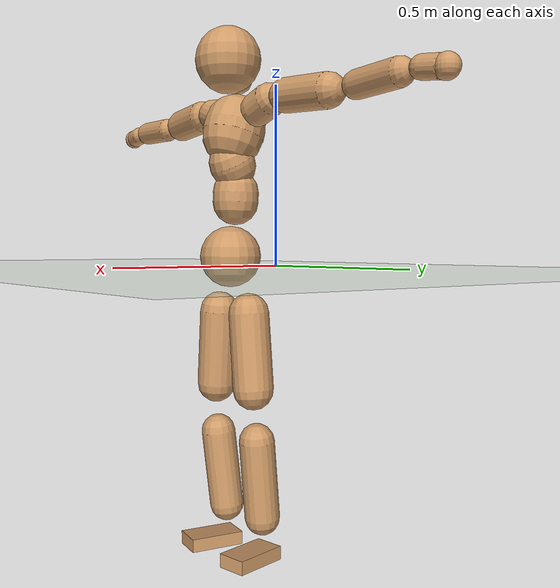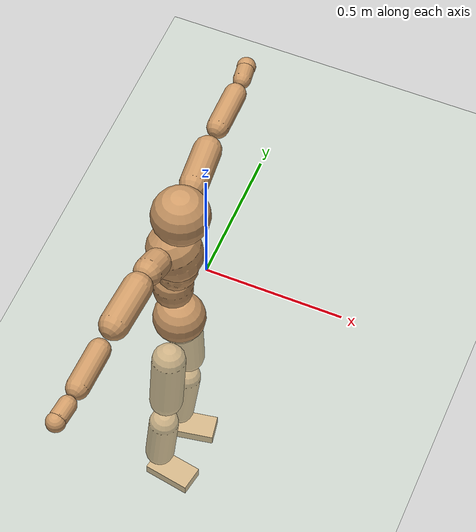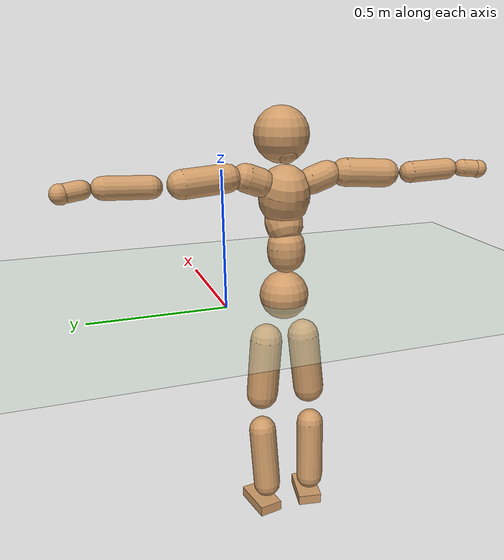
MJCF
<mujoco model="humanoid">
  <compiler coordinate="local"/>
  <default>
    <joint damping="0.0" armature="0.01" stiffness="0.0" limited="true"/>
    <geom conaffinity="1" condim="3" contype="7" margin="0.001" rgba="0.8 0.6 .4 1"/>
  </default>
  <asset>
    <texture type="skybox" builtin="gradient" rgb1=".4 .5 .6" rgb2="0 0 0" width="100" height="100"/>
    <texture builtin="flat" height="1278" mark="cross" markrgb="1 1 1" name="texgeom" random="0.01" rgb1="0.8 0.6 0.4" rgb2="0.8 0.6 0.4" type="cube" width="127"/>
    <texture builtin="checker" height="100" name="texplane" rgb1="0 0 0" rgb2="0.8 0.8 0.8" type="2d" width="100"/>
    <material name="MatPlane" reflectance="0.5" shininess="1" specular="1" texrepeat="60 60" texture="texplane"/>
    <material name="geom" texture="texgeom" texuniform="true"/>
  </asset>
  <worldbody>
    <light cutoff="100" diffuse="1 1 1" dir="-0 0 -1.3" directional="true" exponent="1" pos="0 0 1.3" specular=".1 .1 .1"/>
    <geom conaffinity="1" condim="3" name="floor" pos="0 0 0" rgba="0.8 0.9 0.8 1" size="100 100 .2" type="plane" material="MatPlane"/>
    <body name="Pelvis" pos="-0.002 -0.2261 0.0235">
      <freejoint name="Pelvis"/>
      <geom type="sphere" contype="1" conaffinity="1" density="500" size="0.0921" pos="0.0000 0.0000 0.0000" name="Pelvis"/>
      <body name="L_Hip" pos="-0.012 0.0701 -0.0931">
        <joint name="L_Hip_x" type="hinge" pos="0 0 0" axis="1 0 0" stiffness="800" damping="80" armature="0.02" range="-180.0000 180.0000"/>
        <joint name="L_Hip_y" type="hinge" pos="0 0 0" axis="0 1 0" stiffness="800" damping="80" armature="0.02" range="-180.0000 180.0000"/>
        <joint name="L_Hip_z" type="hinge" pos="0 0 0" axis="0 0 1" stiffness="800" damping="80" armature="0.02" range="-180.0000 180.0000"/>
        <geom type="capsule" contype="1" conaffinity="1" density="500" fromto="-0.0008 0.0067 -0.0756 -0.0031 0.0268 -0.3025" size="0.0607" name="L_Hip"/>
        <body name="L_Knee" pos="-0.0039 0.0335 -0.3781">
          <joint name="L_Knee_x" type="hinge" pos="0 0 0" axis="1 0 0" stiffness="800" damping="80" armature="0.02" range="-180.0000 180.0000"/>
          <joint name="L_Knee_y" type="hinge" pos="0 0 0" axis="0 1 0" stiffness="800" damping="80" armature="0.02" range="-180.0000 180.0000"/>
          <joint name="L_Knee_z" type="hinge" pos="0 0 0" axis="0 0 1" stiffness="800" damping="80" armature="0.02" range="-180.0000 180.0000"/>
          <geom type="capsule" contype="1" conaffinity="1" density="500" fromto="-0.0089 -0.0026 -0.0799 -0.0356 -0.0103 -0.3197" size="0.0533" name="L_Knee"/>
          <body name="L_Ankle" pos="-0.0446 -0.0128 -0.3996">
            <joint name="L_Ankle_x" type="hinge" pos="0 0 0" axis="1 0 0" stiffness="800" damping="80" armature="0.02" range="-180.0000 180.0000"/>
            <joint name="L_Ankle_y" type="hinge" pos="0 0 0" axis="0 1 0" stiffness="800" damping="80" armature="0.02" range="-180.0000 180.0000"/>
            <joint name="L_Ankle_z" type="hinge" pos="0 0 0" axis="0 0 1" stiffness="800" damping="80" armature="0.02" range="-180.0000 180.0000"/>
            <geom type="box" contype="1" conaffinity="1" density="500" pos="0.0591 0.0108 -0.0282" size="0.0838 0.0456 0.0206" quat="0.9959 0.0000 0.0000 0.0901" name="L_Ankle"/>
            <body name="L_Toe" pos="0.1182 0.0216 -0.0563">
              <joint name="L_Toe_x" type="hinge" pos="0 0 0" axis="1 0 0" stiffness="500" damping="50" armature="0.02" range="-180.0000 180.0000"/>
              <joint name="L_Toe_y" type="hinge" pos="0 0 0" axis="0 1 0" stiffness="500" damping="50" armature="0.02" range="-180.0000 180.0000"/>
              <joint name="L_Toe_z" type="hinge" pos="0 0 0" axis="0 0 1" stiffness="500" damping="50" armature="0.02" range="-180.0000 180.0000"/>
              <geom type="box" contype="1" conaffinity="1" density="500" pos="0.0000 0.0000 0.0277" size="0.001 0.0023 0.001" quat="0.9953 0.0000 0.0000 0.0966" name="L_Toe"/>
            </body>
          </body>
        </body>
      </body>
      <body name="R_Hip" pos="-0.0082 -0.0672 -0.0924">
        <joint name="R_Hip_x" type="hinge" pos="0 0 0" axis="1 0 0" stiffness="800" damping="80" armature="0.02" range="-180.0000 180.0000"/>
        <joint name="R_Hip_y" type="hinge" pos="0 0 0" axis="0 1 0" stiffness="800" damping="80" armature="0.02" range="-180.0000 180.0000"/>
        <joint name="R_Hip_z" type="hinge" pos="0 0 0" axis="0 0 1" stiffness="800" damping="80" armature="0.02" range="-180.0000 180.0000"/>
        <geom type="capsule" contype="1" conaffinity="1" density="500" fromto="-0.0014 -0.0079 -0.0771 -0.0057 -0.0316 -0.3083" size="0.0599" name="R_Hip"/>
        <body name="R_Knee" pos="-0.0071 -0.0396 -0.3854">
          <joint name="R_Knee_x" type="hinge" pos="0 0 0" axis="1 0 0" stiffness="800" damping="80" armature="0.02" range="-180.0000 180.0000"/>
          <joint name="R_Knee_y" type="hinge" pos="0 0 0" axis="0 1 0" stiffness="800" damping="80" armature="0.02" range="-180.0000 180.0000"/>
          <joint name="R_Knee_z" type="hinge" pos="0 0 0" axis="0 0 1" stiffness="800" damping="80" armature="0.02" range="-180.0000 180.0000"/>
          <geom type="capsule" contype="1" conaffinity="1" density="500" fromto="-0.0084 0.0031 -0.0797 -0.0337 0.0123 -0.3187" size="0.0535" name="R_Knee"/>
          <body name="R_Ankle" pos="-0.0422 0.0154 -0.3984">
            <joint name="R_Ankle_x" type="hinge" pos="0 0 0" axis="1 0 0" stiffness="800" damping="80" armature="0.02" range="-180.0000 180.0000"/>
            <joint name="R_Ankle_y" type="hinge" pos="0 0 0" axis="0 1 0" stiffness="800" damping="80" armature="0.02" range="-180.0000 180.0000"/>
            <joint name="R_Ankle_z" type="hinge" pos="0 0 0" axis="0 0 1" stiffness="800" damping="80" armature="0.02" range="-180.0000 180.0000"/>
            <geom type="box" contype="1" conaffinity="1" density="500" pos="0.0609 -0.0103 -0.0241" size="0.0853 0.0467 0.0201" quat="0.9965 0.0000 0.0000 -0.0839" name="R_Ankle"/>
            <body name="R_Toe" pos="0.1217 -0.0207 -0.0482">
              <joint name="R_Toe_x" type="hinge" pos="0 0 0" axis="1 0 0" stiffness="500" damping="50" armature="0.02" range="-180.0000 180.0000"/>
              <joint name="R_Toe_y" type="hinge" pos="0 0 0" axis="0 1 0" stiffness="500" damping="50" armature="0.02" range="-180.0000 180.0000"/>
              <joint name="R_Toe_z" type="hinge" pos="0 0 0" axis="0 0 1" stiffness="500" damping="50" armature="0.02" range="-180.0000 180.0000"/>
              <geom type="box" contype="1" conaffinity="1" density="500" pos="0.0000 0.0000 0.0266" size="0.0009 0.0023 0.0011" quat="0.9972 0.0000 0.0000 -0.0748" name="R_Toe"/>
            </body>
          </body>
        </body>
      </body>
      <body name="Torso" pos="-0.0196 -0.0032 0.108">
        <joint name="Torso_x" type="hinge" pos="0 0 0" axis="1 0 0" stiffness="1000" damping="100" armature="0.02" range="-180.0000 180.0000"/>
        <joint name="Torso_y" type="hinge" pos="0 0 0" axis="0 1 0" stiffness="1000" damping="100" armature="0.02" range="-180.0000 180.0000"/>
        <joint name="Torso_z" type="hinge" pos="0 0 0" axis="0 0 1" stiffness="1000" damping="100" armature="0.02" range="-180.0000 180.0000"/>
        <geom type="capsule" contype="1" conaffinity="1" density="500" fromto="-0.0004 0.0029 0.0860 -0.0003 0.0019 0.0573" size="0.0694" name="Torso"/>
        <body name="Spine" pos="-0.0007 0.0049 0.1433">
          <joint name="Spine_x" type="hinge" pos="0 0 0" axis="1 0 0" stiffness="1000" damping="100" armature="0.02" range="-180.0000 180.0000"/>
          <joint name="Spine_y" type="hinge" pos="0 0 0" axis="0 1 0" stiffness="1000" damping="100" armature="0.02" range="-180.0000 180.0000"/>
          <joint name="Spine_z" type="hinge" pos="0 0 0" axis="0 0 1" stiffness="1000" damping="100" armature="0.02" range="-180.0000 180.0000"/>
          <geom type="capsule" contype="1" conaffinity="1" density="500" fromto="0.0175 0.0013 0.0312 0.0117 0.0009 0.0208" size="0.0691" name="Spine"/>
          <body name="Chest" pos="0.0292 0.0022 0.0519">
            <joint name="Chest_x" type="hinge" pos="0 0 0" axis="1 0 0" stiffness="1000" damping="100" armature="0.02" range="-180.0000 180.0000"/>
            <joint name="Chest_y" type="hinge" pos="0 0 0" axis="0 1 0" stiffness="1000" damping="100" armature="0.02" range="-180.0000 180.0000"/>
            <joint name="Chest_z" type="hinge" pos="0 0 0" axis="0 0 1" stiffness="1000" damping="100" armature="0.02" range="-180.0000 180.0000"/>
            <geom type="capsule" contype="1" conaffinity="1" density="500" fromto="-0.0249 -0.0008 0.0904 -0.0166 -0.0005 0.0603" size="0.0928" name="Chest"/>
            <body name="Neck" pos="-0.0488 -0.0027 0.2146">
              <joint name="Neck_x" type="hinge" pos="0 0 0" axis="1 0 0" stiffness="500" damping="50" armature="0.02" range="-180.0000 180.0000"/>
              <joint name="Neck_y" type="hinge" pos="0 0 0" axis="0 1 0" stiffness="500" damping="50" armature="0.02" range="-180.0000 180.0000"/>
              <joint name="Neck_z" type="hinge" pos="0 0 0" axis="0 0 1" stiffness="500" damping="50" armature="0.02" range="-180.0000 180.0000"/>
              <geom type="capsule" contype="1" conaffinity="1" density="500" fromto="0.0102 0.0008 0.0133 0.0406 0.0032 0.0531" size="0.0413" name="Neck"/>
              <body name="Head" pos="0.0508 0.004 0.0664">
                <joint name="Head_x" type="hinge" pos="0 0 0" axis="1 0 0" stiffness="500" damping="50" armature="0.02" range="-180.0000 180.0000"/>
                <joint name="Head_y" type="hinge" pos="0 0 0" axis="0 1 0" stiffness="500" damping="50" armature="0.02" range="-180.0000 180.0000"/>
                <joint name="Head_z" type="hinge" pos="0 0 0" axis="0 0 1" stiffness="500" damping="50" armature="0.02" range="-180.0000 180.0000"/>
                <geom type="sphere" contype="1" conaffinity="1" density="500" size="0.0985" pos="0.0000 0.0000 0.0000" name="Head"/>
              </body>
            </body>
            <body name="L_Thorax" pos="-0.0354 0.0763 0.1199">
              <joint name="L_Thorax_x" type="hinge" pos="0 0 0" axis="1 0 0" stiffness="500" damping="50" armature="0.02" range="-180.0000 180.0000"/>
              <joint name="L_Thorax_y" type="hinge" pos="0 0 0" axis="0 1 0" stiffness="500" damping="50" armature="0.02" range="-180.0000 180.0000"/>
              <joint name="L_Thorax_z" type="hinge" pos="0 0 0" axis="0 0 1" stiffness="500" damping="50" armature="0.02" range="-180.0000 180.0000"/>
              <geom type="capsule" contype="1" conaffinity="1" density="500" fromto="-0.0013 0.0175 0.0066 -0.0052 0.0699 0.0263" size="0.0501" name="L_Thorax"/>
              <body name="L_Shoulder" pos="-0.0065 0.0874 0.0329">
                <joint name="L_Shoulder_x" type="hinge" pos="0 0 0" axis="1 0 0" stiffness="500" damping="50" armature="0.02" range="-720.0000 720.0000"/>
                <joint name="L_Shoulder_y" type="hinge" pos="0 0 0" axis="0 1 0" stiffness="500" damping="50" armature="0.02" range="-720.0000 720.0000"/>
                <joint name="L_Shoulder_z" type="hinge" pos="0 0 0" axis="0 0 1" stiffness="500" damping="50" armature="0.02" range="-720.0000 720.0000"/>
                <geom type="capsule" contype="1" conaffinity="1" density="500" fromto="-0.0058 0.0524 -0.0030 -0.0231 0.2098 -0.0119" size="0.0493" name="L_Shoulder"/>
                <body name="L_Elbow" pos="-0.0288 0.2622 -0.0149">
                  <joint name="L_Elbow_x" type="hinge" pos="0 0 0" axis="1 0 0" stiffness="500" damping="50" armature="0.02" range="-720.0000 720.0000"/>
                  <joint name="L_Elbow_y" type="hinge" pos="0 0 0" axis="0 1 0" stiffness="500" damping="50" armature="0.02" range="-720.0000 720.0000"/>
                  <joint name="L_Elbow_z" type="hinge" pos="0 0 0" axis="0 0 1" stiffness="500" damping="50" armature="0.02" range="-720.0000 720.0000"/>
                  <geom type="capsule" contype="1" conaffinity="1" density="500" fromto="0.0000 0.0496 0.0018 0.0002 0.1986 0.0072" size="0.0386" name="L_Elbow"/>
                  <body name="L_Wrist" pos="0.0002 0.2482 0.009">
                    <joint name="L_Wrist_x" type="hinge" pos="0 0 0" axis="1 0 0" stiffness="300" damping="30" armature="0.02" range="-180.0000 180.0000"/>
                    <joint name="L_Wrist_y" type="hinge" pos="0 0 0" axis="0 1 0" stiffness="300" damping="30" armature="0.02" range="-180.0000 180.0000"/>
                    <joint name="L_Wrist_z" type="hinge" pos="0 0 0" axis="0 0 1" stiffness="300" damping="30" armature="0.02" range="-180.0000 180.0000"/>
                    <geom type="capsule" contype="1" conaffinity="1" density="500" fromto="-0.0027 0.0164 -0.0020 -0.0109 0.0657 -0.0081" size="0.0308" name="L_Wrist"/>
                    <body name="L_Hand" pos="-0.0136 0.0821 -0.0101">
                      <joint name="L_Hand_x" type="hinge" pos="0 0 0" axis="1 0 0" stiffness="300" damping="30" armature="0.02" range="-180.0000 180.0000"/>
                      <joint name="L_Hand_y" type="hinge" pos="0 0 0" axis="0 1 0" stiffness="300" damping="30" armature="0.02" range="-180.0000 180.0000"/>
                      <joint name="L_Hand_z" type="hinge" pos="0 0 0" axis="0 0 1" stiffness="300" damping="30" armature="0.02" range="-180.0000 180.0000"/>
                      <geom type="sphere" contype="1" conaffinity="1" density="500" size="0.0331" pos="0.0000 0.0000 0.0000" name="L_Hand"/>
                    </body>
                  </body>
                </body>
              </body>
            </body>
            <body name="R_Thorax" pos="-0.0402 -0.0775 0.1174">
              <joint name="R_Thorax_x" type="hinge" pos="0 0 0" axis="1 0 0" stiffness="500" damping="50" armature="0.02" range="-180.0000 180.0000"/>
              <joint name="R_Thorax_y" type="hinge" pos="0 0 0" axis="0 1 0" stiffness="500" damping="50" armature="0.02" range="-180.0000 180.0000"/>
              <joint name="R_Thorax_z" type="hinge" pos="0 0 0" axis="0 0 1" stiffness="500" damping="50" armature="0.02" range="-180.0000 180.0000"/>
              <geom type="capsule" contype="1" conaffinity="1" density="500" fromto="-0.0017 -0.0182 0.0067 -0.0069 -0.0730 0.0268" size="0.0487" name="R_Thorax"/>
              <body name="R_Shoulder" pos="-0.0086 -0.0912 0.0335">
                <joint name="R_Shoulder_x" type="hinge" pos="0 0 0" axis="1 0 0" stiffness="500" damping="50" armature="0.02" range="-720.0000 720.0000"/>
                <joint name="R_Shoulder_y" type="hinge" pos="0 0 0" axis="0 1 0" stiffness="500" damping="50" armature="0.02" range="-720.0000 720.0000"/>
                <joint name="R_Shoulder_z" type="hinge" pos="0 0 0" axis="0 0 1" stiffness="500" damping="50" armature="0.02" range="-720.0000 720.0000"/>
                <geom type="capsule" contype="1" conaffinity="1" density="500" fromto="-0.0039 -0.0510 -0.0029 -0.0157 -0.2040 -0.0118" size="0.0506" name="R_Shoulder"/>
                <body name="R_Elbow" pos="-0.0196 -0.2551 -0.0147">
                  <joint name="R_Elbow_x" type="hinge" pos="0 0 0" axis="1 0 0" stiffness="500" damping="50" armature="0.02" range="-720.0000 720.0000"/>
                  <joint name="R_Elbow_y" type="hinge" pos="0 0 0" axis="0 1 0" stiffness="500" damping="50" armature="0.02" range="-720.0000 720.0000"/>
                  <joint name="R_Elbow_z" type="hinge" pos="0 0 0" axis="0 0 1" stiffness="500" damping="50" armature="0.02" range="-720.0000 720.0000"/>
                  <geom type="capsule" contype="1" conaffinity="1" density="500" fromto="-0.0008 -0.0508 0.0016 -0.0033 -0.2032 0.0064" size="0.0385" name="R_Elbow"/>
                  <body name="R_Wrist" pos="-0.0041 -0.254 0.008">
                    <joint name="R_Wrist_x" type="hinge" pos="0 0 0" axis="1 0 0" stiffness="300" damping="30" armature="0.02" range="-180.0000 180.0000"/>
                    <joint name="R_Wrist_y" type="hinge" pos="0 0 0" axis="0 1 0" stiffness="300" damping="30" armature="0.02" range="-180.0000 180.0000"/>
                    <joint name="R_Wrist_z" type="hinge" pos="0 0 0" axis="0 0 1" stiffness="300" damping="30" armature="0.02" range="-180.0000 180.0000"/>
                    <geom type="capsule" contype="1" conaffinity="1" density="500" fromto="-0.0021 -0.0164 -0.0015 -0.0085 -0.0657 -0.0059" size="0.0312" name="R_Wrist"/>
                    <body name="R_Hand" pos="-0.0106 -0.0821 -0.0074">
                      <joint name="R_Hand_x" type="hinge" pos="0 0 0" axis="1 0 0" stiffness="300" damping="30" armature="0.02" range="-180.0000 180.0000"/>
                      <joint name="R_Hand_y" type="hinge" pos="0 0 0" axis="0 1 0" stiffness="300" damping="30" armature="0.02" range="-180.0000 180.0000"/>
                      <joint name="R_Hand_z" type="hinge" pos="0 0 0" axis="0 0 1" stiffness="300" damping="30" armature="0.02" range="-180.0000 180.0000"/>
                      <geom type="sphere" contype="1" conaffinity="1" density="500" size="0.0329" pos="0.0000 0.0000 0.0000" name="R_Hand"/>
                    </body>
                  </body>
                </body>
              </body>
            </body>
          </body>
        </body>
      </body>
    </body>
  </worldbody>
  <actuator>
    <motor name="L_Hip_x" joint="L_Hip_x" gear="500"/>
    <motor name="L_Hip_y" joint="L_Hip_y" gear="500"/>
    <motor name="L_Hip_z" joint="L_Hip_z" gear="500"/>
    <motor name="L_Knee_x" joint="L_Knee_x" gear="500"/>
    <motor name="L_Knee_y" joint="L_Knee_y" gear="500"/>
    <motor name="L_Knee_z" joint="L_Knee_z" gear="500"/>
    <motor name="L_Ankle_x" joint="L_Ankle_x" gear="500"/>
    <motor name="L_Ankle_y" joint="L_Ankle_y" gear="500"/>
    <motor name="L_Ankle_z" joint="L_Ankle_z" gear="500"/>
    <motor name="L_Toe_x" joint="L_Toe_x" gear="500"/>
    <motor name="L_Toe_y" joint="L_Toe_y" gear="500"/>
    <motor name="L_Toe_z" joint="L_Toe_z" gear="500"/>
    <motor name="R_Hip_x" joint="R_Hip_x" gear="500"/>
    <motor name="R_Hip_y" joint="R_Hip_y" gear="500"/>
    <motor name="R_Hip_z" joint="R_Hip_z" gear="500"/>
    <motor name="R_Knee_x" joint="R_Knee_x" gear="500"/>
    <motor name="R_Knee_y" joint="R_Knee_y" gear="500"/>
    <motor name="R_Knee_z" joint="R_Knee_z" gear="500"/>
    <motor name="R_Ankle_x" joint="R_Ankle_x" gear="500"/>
    <motor name="R_Ankle_y" joint="R_Ankle_y" gear="500"/>
    <motor name="R_Ankle_z" joint="R_Ankle_z" gear="500"/>
    <motor name="R_Toe_x" joint="R_Toe_x" gear="500"/>
    <motor name="R_Toe_y" joint="R_Toe_y" gear="500"/>
    <motor name="R_Toe_z" joint="R_Toe_z" gear="500"/>
    <motor name="Torso_x" joint="Torso_x" gear="500"/>
    <motor name="Torso_y" joint="Torso_y" gear="500"/>
    <motor name="Torso_z" joint="Torso_z" gear="500"/>
    <motor name="Spine_x" joint="Spine_x" gear="500"/>
    <motor name="Spine_y" joint="Spine_y" gear="500"/>
    <motor name="Spine_z" joint="Spine_z" gear="500"/>
    <motor name="Chest_x" joint="Chest_x" gear="500"/>
    <motor name="Chest_y" joint="Chest_y" gear="500"/>
    <motor name="Chest_z" joint="Chest_z" gear="500"/>
    <motor name="Neck_x" joint="Neck_x" gear="500"/>
    <motor name="Neck_y" joint="Neck_y" gear="500"/>
    <motor name="Neck_z" joint="Neck_z" gear="500"/>
    <motor name="Head_x" joint="Head_x" gear="500"/>
    <motor name="Head_y" joint="Head_y" gear="500"/>
    <motor name="Head_z" joint="Head_z" gear="500"/>
    <motor name="L_Thorax_x" joint="L_Thorax_x" gear="500"/>
    <motor name="L_Thorax_y" joint="L_Thorax_y" gear="500"/>
    <motor name="L_Thorax_z" joint="L_Thorax_z" gear="500"/>
    <motor name="L_Shoulder_x" joint="L_Shoulder_x" gear="500"/>
    <motor name="L_Shoulder_y" joint="L_Shoulder_y" gear="500"/>
    <motor name="L_Shoulder_z" joint="L_Shoulder_z" gear="500"/>
    <motor name="L_Elbow_x" joint="L_Elbow_x" gear="500"/>
    <motor name="L_Elbow_y" joint="L_Elbow_y" gear="500"/>
    <motor name="L_Elbow_z" joint="L_Elbow_z" gear="500"/>
    <motor name="L_Wrist_x" joint="L_Wrist_x" gear="500"/>
    <motor name="L_Wrist_y" joint="L_Wrist_y" gear="500"/>
    <motor name="L_Wrist_z" joint="L_Wrist_z" gear="500"/>
    <motor name="L_Hand_x" joint="L_Hand_x" gear="500"/>
    <motor name="L_Hand_y" joint="L_Hand_y" gear="500"/>
    <motor name="L_Hand_z" joint="L_Hand_z" gear="500"/>
    <motor name="R_Thorax_x" joint="R_Thorax_x" gear="500"/>
    <motor name="R_Thorax_y" joint="R_Thorax_y" gear="500"/>
    <motor name="R_Thorax_z" joint="R_Thorax_z" gear="500"/>
    <motor name="R_Shoulder_x" joint="R_Shoulder_x" gear="500"/>
    <motor name="R_Shoulder_y" joint="R_Shoulder_y" gear="500"/>
    <motor name="R_Shoulder_z" joint="R_Shoulder_z" gear="500"/>
    <motor name="R_Elbow_x" joint="R_Elbow_x" gear="500"/>
    <motor name="R_Elbow_y" joint="R_Elbow_y" gear="500"/>
    <motor name="R_Elbow_z" joint="R_Elbow_z" gear="500"/>
    <motor name="R_Wrist_x" joint="R_Wrist_x" gear="500"/>
    <motor name="R_Wrist_y" joint="R_Wrist_y" gear="500"/>
    <motor name="R_Wrist_z" joint="R_Wrist_z" gear="500"/>
    <motor name="R_Hand_x" joint="R_Hand_x" gear="500"/>
    <motor name="R_Hand_y" joint="R_Hand_y" gear="500"/>
    <motor name="R_Hand_z" joint="R_Hand_z" gear="500"/>
  </actuator>
  <contact>
    <exclude body1="Torso" body2="Chest"/>
    <exclude body1="Head" body2="Chest"/>
    <exclude body1="R_Knee" body2="R_Toe"/>
    <exclude body1="R_Knee" body2="L_Ankle"/>
    <exclude body1="R_Knee" body2="L_Toe"/>
    <exclude body1="L_Knee" body2="L_Toe"/>
    <exclude body1="L_Knee" body2="R_Ankle"/>
    <exclude body1="L_Knee" body2="R_Toe"/>
    <exclude body1="L_Shoulder" body2="Chest"/>
    <exclude body1="R_Shoulder" body2="Chest"/>
  </contact>
  <sensor/>
  <size njmax="700" nconmax="700"/>
</mujoco>
